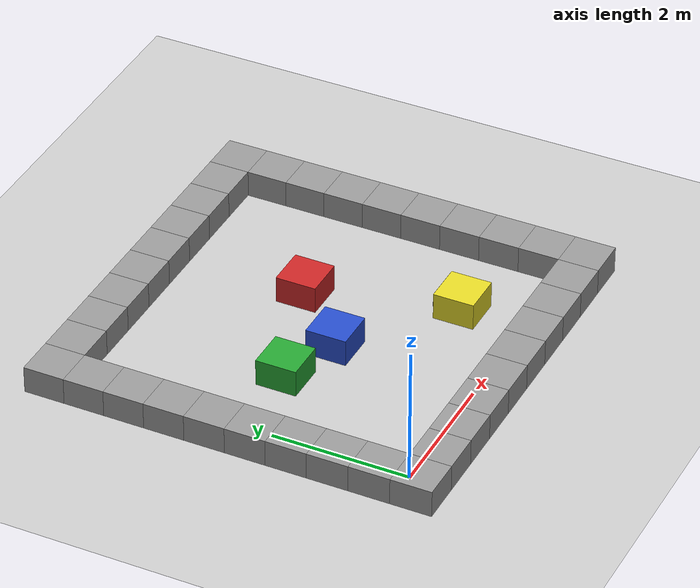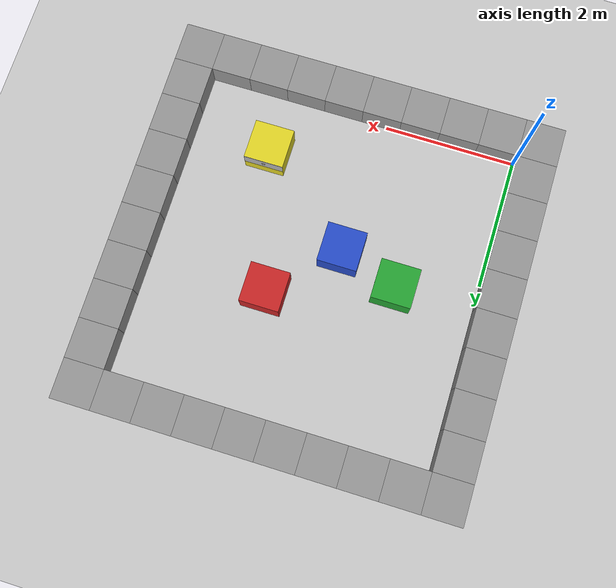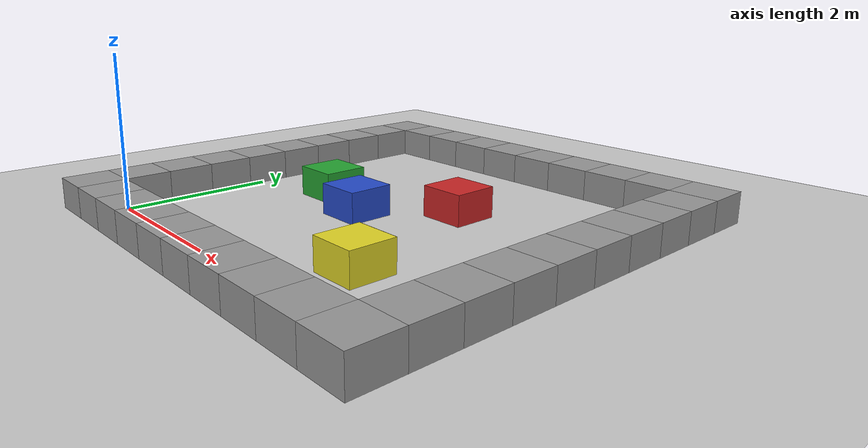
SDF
<sdf version="1.4">
 <world name="default">
  <scene><ambient>0.4 0.4 0.4 1</ambient><shadows>0</shadows></scene>
  <include>
   <uri>model://artag_background</uri>
   <pose>3.5999999999999996 1.2029999999999998 0.30000000000000004 -1.5707963267948966 0 3.141592653589793</pose>
  </include>
  <include>
   <uri>model://27</uri>
   <pose>3.5999999999999996 1.2029999999999998 0.275 0 0 1.5707963267948966</pose>
  </include>
  <include><uri>model://ground_plane</uri></include>
  <include><uri>model://sun</uri></include>
  <model name="818">
   <static>true</static>
   <pose>2.9999999999999996 2.9999999999999996 0.2 0 0 0</pose>
   <link name="link">
    <inertial><mass value="1"/><inertia ixx="1" ixy="1" ixz="1" iyy="1" iyz="1" izz="1"/></inertial>
    <collision name="collision"><geometry><box><size>0.6 0.6 0.4</size></box></geometry></collision>
    <visual name="visual">
     <geometry><box><size>0.6 0.6 0.4</size></box></geometry>
     <material>
      <script><name>Gazebo/Red</name><uri>file://media/materials/scripts/gazebo.material</uri></script>
     </material>
    </visual>
   </link>
  </model>
  <model name="820">
   <static>true</static>
   <pose>1.2 2.4 0.2 0 0 0</pose>
   <link name="link">
    <inertial><mass value="1"/><inertia ixx="1" ixy="1" ixz="1" iyy="1" iyz="1" izz="1"/></inertial>
    <collision name="collision"><geometry><box><size>0.6 0.6 0.4</size></box></geometry></collision>
    <visual name="visual">
     <geometry><box><size>0.6 0.6 0.4</size></box></geometry>
     <material>
      <script><name>Gazebo/Green</name><uri>file://media/materials/scripts/gazebo.material</uri></script>
     </material>
    </visual>
   </link>
  </model>
  <model name="822">
   <static>true</static>
   <pose>2.0999999999999996 2.0999999999999996 0.2 0 0 0</pose>
   <link name="link">
    <inertial><mass value="1"/><inertia ixx="1" ixy="1" ixz="1" iyy="1" iyz="1" izz="1"/></inertial>
    <collision name="collision"><geometry><box><size>0.6 0.6 0.4</size></box></geometry></collision>
    <visual name="visual">
     <geometry><box><size>0.6 0.6 0.4</size></box></geometry>
     <material>
      <script><name>Gazebo/Blue</name><uri>file://media/materials/scripts/gazebo.material</uri></script>
     </material>
    </visual>
   </link>
  </model>
  <model name="824">
   <static>true</static>
   <pose>3.5999999999999996 0.8999999999999999 0.2 0 0 0</pose>
   <link name="link">
    <inertial><mass value="1"/><inertia ixx="1" ixy="1" ixz="1" iyy="1" iyz="1" izz="1"/></inertial>
    <collision name="collision"><geometry><box><size>0.6 0.6 0.4</size></box></geometry></collision>
    <visual name="visual">
     <geometry><box><size>0.6 0.6 0.4</size></box></geometry>
     <material>
      <script><name>Gazebo/Yellow</name><uri>file://media/materials/scripts/gazebo.material</uri></script>
     </material>
    </visual>
   </link>
  </model>
  <model name="0_0">
   <static>true</static>
   <pose>-0.3 -0.3 0.2 0 0 0</pose>
   <link name="link">
    <inertial><mass value="1"/><inertia ixx="1" ixy="1" ixz="1" iyy="1" iyz="1" izz="1"/></inertial>
    <collision name="collision"><geometry><box><size>0.6 0.6 0.4</size></box></geometry></collision>
    <visual name="visual">
     <geometry><box><size>0.6 0.6 0.4</size></box></geometry>
     <material>
      <script><name>Gazebo/Grey</name><uri>file://media/materials/scripts/gazebo.material</uri></script>
     </material>
    </visual>
   </link>
  </model>
  <model name="1_1">
   <static>true</static>
   <pose>5.1 -0.3 0.2 0 0 0</pose>
   <link name="link">
    <inertial><mass value="1"/><inertia ixx="1" ixy="1" ixz="1" iyy="1" iyz="1" izz="1"/></inertial>
    <collision name="collision"><geometry><box><size>0.6 0.6 0.4</size></box></geometry></collision>
    <visual name="visual">
     <geometry><box><size>0.6 0.6 0.4</size></box></geometry>
     <material>
      <script><name>Gazebo/Grey</name><uri>file://media/materials/scripts/gazebo.material</uri></script>
     </material>
    </visual>
   </link>
  </model>
  <model name="0_2">
   <static>true</static>
   <pose>-0.3 -0.3 0.2 0 0 0</pose>
   <link name="link">
    <inertial><mass value="1"/><inertia ixx="1" ixy="1" ixz="1" iyy="1" iyz="1" izz="1"/></inertial>
    <collision name="collision"><geometry><box><size>0.6 0.6 0.4</size></box></geometry></collision>
    <visual name="visual">
     <geometry><box><size>0.6 0.6 0.4</size></box></geometry>
     <material>
      <script><name>Gazebo/Grey</name><uri>file://media/materials/scripts/gazebo.material</uri></script>
     </material>
    </visual>
   </link>
  </model>
  <model name="0_3">
   <static>true</static>
   <pose>-0.3 5.1 0.2 0 0 0</pose>
   <link name="link">
    <inertial><mass value="1"/><inertia ixx="1" ixy="1" ixz="1" iyy="1" iyz="1" izz="1"/></inertial>
    <collision name="collision"><geometry><box><size>0.6 0.6 0.4</size></box></geometry></collision>
    <visual name="visual">
     <geometry><box><size>0.6 0.6 0.4</size></box></geometry>
     <material>
      <script><name>Gazebo/Grey</name><uri>file://media/materials/scripts/gazebo.material</uri></script>
     </material>
    </visual>
   </link>
  </model>
  <model name="0_4">
   <static>true</static>
   <pose>-0.3 0.3 0.2 0 0 0</pose>
   <link name="link">
    <inertial><mass value="1"/><inertia ixx="1" ixy="1" ixz="1" iyy="1" iyz="1" izz="1"/></inertial>
    <collision name="collision"><geometry><box><size>0.6 0.6 0.4</size></box></geometry></collision>
    <visual name="visual">
     <geometry><box><size>0.6 0.6 0.4</size></box></geometry>
     <material>
      <script><name>Gazebo/Grey</name><uri>file://media/materials/scripts/gazebo.material</uri></script>
     </material>
    </visual>
   </link>
  </model>
  <model name="1_5">
   <static>true</static>
   <pose>5.1 0.3 0.2 0 0 0</pose>
   <link name="link">
    <inertial><mass value="1"/><inertia ixx="1" ixy="1" ixz="1" iyy="1" iyz="1" izz="1"/></inertial>
    <collision name="collision"><geometry><box><size>0.6 0.6 0.4</size></box></geometry></collision>
    <visual name="visual">
     <geometry><box><size>0.6 0.6 0.4</size></box></geometry>
     <material>
      <script><name>Gazebo/Grey</name><uri>file://media/materials/scripts/gazebo.material</uri></script>
     </material>
    </visual>
   </link>
  </model>
  <model name="0_6">
   <static>true</static>
   <pose>0.3 -0.3 0.2 0 0 0</pose>
   <link name="link">
    <inertial><mass value="1"/><inertia ixx="1" ixy="1" ixz="1" iyy="1" iyz="1" izz="1"/></inertial>
    <collision name="collision"><geometry><box><size>0.6 0.6 0.4</size></box></geometry></collision>
    <visual name="visual">
     <geometry><box><size>0.6 0.6 0.4</size></box></geometry>
     <material>
      <script><name>Gazebo/Grey</name><uri>file://media/materials/scripts/gazebo.material</uri></script>
     </material>
    </visual>
   </link>
  </model>
  <model name="0_7">
   <static>true</static>
   <pose>0.3 5.1 0.2 0 0 0</pose>
   <link name="link">
    <inertial><mass value="1"/><inertia ixx="1" ixy="1" ixz="1" iyy="1" iyz="1" izz="1"/></inertial>
    <collision name="collision"><geometry><box><size>0.6 0.6 0.4</size></box></geometry></collision>
    <visual name="visual">
     <geometry><box><size>0.6 0.6 0.4</size></box></geometry>
     <material>
      <script><name>Gazebo/Grey</name><uri>file://media/materials/scripts/gazebo.material</uri></script>
     </material>
    </visual>
   </link>
  </model>
  <model name="0_8">
   <static>true</static>
   <pose>-0.3 0.8999999999999999 0.2 0 0 0</pose>
   <link name="link">
    <inertial><mass value="1"/><inertia ixx="1" ixy="1" ixz="1" iyy="1" iyz="1" izz="1"/></inertial>
    <collision name="collision"><geometry><box><size>0.6 0.6 0.4</size></box></geometry></collision>
    <visual name="visual">
     <geometry><box><size>0.6 0.6 0.4</size></box></geometry>
     <material>
      <script><name>Gazebo/Grey</name><uri>file://media/materials/scripts/gazebo.material</uri></script>
     </material>
    </visual>
   </link>
  </model>
  <model name="1_9">
   <static>true</static>
   <pose>5.1 0.8999999999999999 0.2 0 0 0</pose>
   <link name="link">
    <inertial><mass value="1"/><inertia ixx="1" ixy="1" ixz="1" iyy="1" iyz="1" izz="1"/></inertial>
    <collision name="collision"><geometry><box><size>0.6 0.6 0.4</size></box></geometry></collision>
    <visual name="visual">
     <geometry><box><size>0.6 0.6 0.4</size></box></geometry>
     <material>
      <script><name>Gazebo/Grey</name><uri>file://media/materials/scripts/gazebo.material</uri></script>
     </material>
    </visual>
   </link>
  </model>
  <model name="0_10">
   <static>true</static>
   <pose>0.8999999999999999 -0.3 0.2 0 0 0</pose>
   <link name="link">
    <inertial><mass value="1"/><inertia ixx="1" ixy="1" ixz="1" iyy="1" iyz="1" izz="1"/></inertial>
    <collision name="collision"><geometry><box><size>0.6 0.6 0.4</size></box></geometry></collision>
    <visual name="visual">
     <geometry><box><size>0.6 0.6 0.4</size></box></geometry>
     <material>
      <script><name>Gazebo/Grey</name><uri>file://media/materials/scripts/gazebo.material</uri></script>
     </material>
    </visual>
   </link>
  </model>
  <model name="0_11">
   <static>true</static>
   <pose>0.8999999999999999 5.1 0.2 0 0 0</pose>
   <link name="link">
    <inertial><mass value="1"/><inertia ixx="1" ixy="1" ixz="1" iyy="1" iyz="1" izz="1"/></inertial>
    <collision name="collision"><geometry><box><size>0.6 0.6 0.4</size></box></geometry></collision>
    <visual name="visual">
     <geometry><box><size>0.6 0.6 0.4</size></box></geometry>
     <material>
      <script><name>Gazebo/Grey</name><uri>file://media/materials/scripts/gazebo.material</uri></script>
     </material>
    </visual>
   </link>
  </model>
  <model name="0_12">
   <static>true</static>
   <pose>-0.3 1.5 0.2 0 0 0</pose>
   <link name="link">
    <inertial><mass value="1"/><inertia ixx="1" ixy="1" ixz="1" iyy="1" iyz="1" izz="1"/></inertial>
    <collision name="collision"><geometry><box><size>0.6 0.6 0.4</size></box></geometry></collision>
    <visual name="visual">
     <geometry><box><size>0.6 0.6 0.4</size></box></geometry>
     <material>
      <script><name>Gazebo/Grey</name><uri>file://media/materials/scripts/gazebo.material</uri></script>
     </material>
    </visual>
   </link>
  </model>
  <model name="1_13">
   <static>true</static>
   <pose>5.1 1.5 0.2 0 0 0</pose>
   <link name="link">
    <inertial><mass value="1"/><inertia ixx="1" ixy="1" ixz="1" iyy="1" iyz="1" izz="1"/></inertial>
    <collision name="collision"><geometry><box><size>0.6 0.6 0.4</size></box></geometry></collision>
    <visual name="visual">
     <geometry><box><size>0.6 0.6 0.4</size></box></geometry>
     <material>
      <script><name>Gazebo/Grey</name><uri>file://media/materials/scripts/gazebo.material</uri></script>
     </material>
    </visual>
   </link>
  </model>
  <model name="0_14">
   <static>true</static>
   <pose>1.5 -0.3 0.2 0 0 0</pose>
   <link name="link">
    <inertial><mass value="1"/><inertia ixx="1" ixy="1" ixz="1" iyy="1" iyz="1" izz="1"/></inertial>
    <collision name="collision"><geometry><box><size>0.6 0.6 0.4</size></box></geometry></collision>
    <visual name="visual">
     <geometry><box><size>0.6 0.6 0.4</size></box></geometry>
     <material>
      <script><name>Gazebo/Grey</name><uri>file://media/materials/scripts/gazebo.material</uri></script>
     </material>
    </visual>
   </link>
  </model>
  <model name="0_15">
   <static>true</static>
   <pose>1.5 5.1 0.2 0 0 0</pose>
   <link name="link">
    <inertial><mass value="1"/><inertia ixx="1" ixy="1" ixz="1" iyy="1" iyz="1" izz="1"/></inertial>
    <collision name="collision"><geometry><box><size>0.6 0.6 0.4</size></box></geometry></collision>
    <visual name="visual">
     <geometry><box><size>0.6 0.6 0.4</size></box></geometry>
     <material>
      <script><name>Gazebo/Grey</name><uri>file://media/materials/scripts/gazebo.material</uri></script>
     </material>
    </visual>
   </link>
  </model>
  <model name="0_16">
   <static>true</static>
   <pose>-0.3 2.0999999999999996 0.2 0 0 0</pose>
   <link name="link">
    <inertial><mass value="1"/><inertia ixx="1" ixy="1" ixz="1" iyy="1" iyz="1" izz="1"/></inertial>
    <collision name="collision"><geometry><box><size>0.6 0.6 0.4</size></box></geometry></collision>
    <visual name="visual">
     <geometry><box><size>0.6 0.6 0.4</size></box></geometry>
     <material>
      <script><name>Gazebo/Grey</name><uri>file://media/materials/scripts/gazebo.material</uri></script>
     </material>
    </visual>
   </link>
  </model>
  <model name="1_17">
   <static>true</static>
   <pose>5.1 2.0999999999999996 0.2 0 0 0</pose>
   <link name="link">
    <inertial><mass value="1"/><inertia ixx="1" ixy="1" ixz="1" iyy="1" iyz="1" izz="1"/></inertial>
    <collision name="collision"><geometry><box><size>0.6 0.6 0.4</size></box></geometry></collision>
    <visual name="visual">
     <geometry><box><size>0.6 0.6 0.4</size></box></geometry>
     <material>
      <script><name>Gazebo/Grey</name><uri>file://media/materials/scripts/gazebo.material</uri></script>
     </material>
    </visual>
   </link>
  </model>
  <model name="0_18">
   <static>true</static>
   <pose>2.0999999999999996 -0.3 0.2 0 0 0</pose>
   <link name="link">
    <inertial><mass value="1"/><inertia ixx="1" ixy="1" ixz="1" iyy="1" iyz="1" izz="1"/></inertial>
    <collision name="collision"><geometry><box><size>0.6 0.6 0.4</size></box></geometry></collision>
    <visual name="visual">
     <geometry><box><size>0.6 0.6 0.4</size></box></geometry>
     <material>
      <script><name>Gazebo/Grey</name><uri>file://media/materials/scripts/gazebo.material</uri></script>
     </material>
    </visual>
   </link>
  </model>
  <model name="0_19">
   <static>true</static>
   <pose>2.0999999999999996 5.1 0.2 0 0 0</pose>
   <link name="link">
    <inertial><mass value="1"/><inertia ixx="1" ixy="1" ixz="1" iyy="1" iyz="1" izz="1"/></inertial>
    <collision name="collision"><geometry><box><size>0.6 0.6 0.4</size></box></geometry></collision>
    <visual name="visual">
     <geometry><box><size>0.6 0.6 0.4</size></box></geometry>
     <material>
      <script><name>Gazebo/Grey</name><uri>file://media/materials/scripts/gazebo.material</uri></script>
     </material>
    </visual>
   </link>
  </model>
  <model name="0_20">
   <static>true</static>
   <pose>-0.3 2.6999999999999997 0.2 0 0 0</pose>
   <link name="link">
    <inertial><mass value="1"/><inertia ixx="1" ixy="1" ixz="1" iyy="1" iyz="1" izz="1"/></inertial>
    <collision name="collision"><geometry><box><size>0.6 0.6 0.4</size></box></geometry></collision>
    <visual name="visual">
     <geometry><box><size>0.6 0.6 0.4</size></box></geometry>
     <material>
      <script><name>Gazebo/Grey</name><uri>file://media/materials/scripts/gazebo.material</uri></script>
     </material>
    </visual>
   </link>
  </model>
  <model name="1_21">
   <static>true</static>
   <pose>5.1 2.6999999999999997 0.2 0 0 0</pose>
   <link name="link">
    <inertial><mass value="1"/><inertia ixx="1" ixy="1" ixz="1" iyy="1" iyz="1" izz="1"/></inertial>
    <collision name="collision"><geometry><box><size>0.6 0.6 0.4</size></box></geometry></collision>
    <visual name="visual">
     <geometry><box><size>0.6 0.6 0.4</size></box></geometry>
     <material>
      <script><name>Gazebo/Grey</name><uri>file://media/materials/scripts/gazebo.material</uri></script>
     </material>
    </visual>
   </link>
  </model>
  <model name="0_22">
   <static>true</static>
   <pose>2.6999999999999997 -0.3 0.2 0 0 0</pose>
   <link name="link">
    <inertial><mass value="1"/><inertia ixx="1" ixy="1" ixz="1" iyy="1" iyz="1" izz="1"/></inertial>
    <collision name="collision"><geometry><box><size>0.6 0.6 0.4</size></box></geometry></collision>
    <visual name="visual">
     <geometry><box><size>0.6 0.6 0.4</size></box></geometry>
     <material>
      <script><name>Gazebo/Grey</name><uri>file://media/materials/scripts/gazebo.material</uri></script>
     </material>
    </visual>
   </link>
  </model>
  <model name="0_23">
   <static>true</static>
   <pose>2.6999999999999997 5.1 0.2 0 0 0</pose>
   <link name="link">
    <inertial><mass value="1"/><inertia ixx="1" ixy="1" ixz="1" iyy="1" iyz="1" izz="1"/></inertial>
    <collision name="collision"><geometry><box><size>0.6 0.6 0.4</size></box></geometry></collision>
    <visual name="visual">
     <geometry><box><size>0.6 0.6 0.4</size></box></geometry>
     <material>
      <script><name>Gazebo/Grey</name><uri>file://media/materials/scripts/gazebo.material</uri></script>
     </material>
    </visual>
   </link>
  </model>
  <model name="0_24">
   <static>true</static>
   <pose>-0.3 3.3 0.2 0 0 0</pose>
   <link name="link">
    <inertial><mass value="1"/><inertia ixx="1" ixy="1" ixz="1" iyy="1" iyz="1" izz="1"/></inertial>
    <collision name="collision"><geometry><box><size>0.6 0.6 0.4</size></box></geometry></collision>
    <visual name="visual">
     <geometry><box><size>0.6 0.6 0.4</size></box></geometry>
     <material>
      <script><name>Gazebo/Grey</name><uri>file://media/materials/scripts/gazebo.material</uri></script>
     </material>
    </visual>
   </link>
  </model>
  <model name="1_25">
   <static>true</static>
   <pose>5.1 3.3 0.2 0 0 0</pose>
   <link name="link">
    <inertial><mass value="1"/><inertia ixx="1" ixy="1" ixz="1" iyy="1" iyz="1" izz="1"/></inertial>
    <collision name="collision"><geometry><box><size>0.6 0.6 0.4</size></box></geometry></collision>
    <visual name="visual">
     <geometry><box><size>0.6 0.6 0.4</size></box></geometry>
     <material>
      <script><name>Gazebo/Grey</name><uri>file://media/materials/scripts/gazebo.material</uri></script>
     </material>
    </visual>
   </link>
  </model>
  <model name="0_26">
   <static>true</static>
   <pose>3.3 -0.3 0.2 0 0 0</pose>
   <link name="link">
    <inertial><mass value="1"/><inertia ixx="1" ixy="1" ixz="1" iyy="1" iyz="1" izz="1"/></inertial>
    <collision name="collision"><geometry><box><size>0.6 0.6 0.4</size></box></geometry></collision>
    <visual name="visual">
     <geometry><box><size>0.6 0.6 0.4</size></box></geometry>
     <material>
      <script><name>Gazebo/Grey</name><uri>file://media/materials/scripts/gazebo.material</uri></script>
     </material>
    </visual>
   </link>
  </model>
  <model name="0_27">
   <static>true</static>
   <pose>3.3 5.1 0.2 0 0 0</pose>
   <link name="link">
    <inertial><mass value="1"/><inertia ixx="1" ixy="1" ixz="1" iyy="1" iyz="1" izz="1"/></inertial>
    <collision name="collision"><geometry><box><size>0.6 0.6 0.4</size></box></geometry></collision>
    <visual name="visual">
     <geometry><box><size>0.6 0.6 0.4</size></box></geometry>
     <material>
      <script><name>Gazebo/Grey</name><uri>file://media/materials/scripts/gazebo.material</uri></script>
     </material>
    </visual>
   </link>
  </model>
  <model name="0_28">
   <static>true</static>
   <pose>-0.3 3.8999999999999995 0.2 0 0 0</pose>
   <link name="link">
    <inertial><mass value="1"/><inertia ixx="1" ixy="1" ixz="1" iyy="1" iyz="1" izz="1"/></inertial>
    <collision name="collision"><geometry><box><size>0.6 0.6 0.4</size></box></geometry></collision>
    <visual name="visual">
     <geometry><box><size>0.6 0.6 0.4</size></box></geometry>
     <material>
      <script><name>Gazebo/Grey</name><uri>file://media/materials/scripts/gazebo.material</uri></script>
     </material>
    </visual>
   </link>
  </model>
  <model name="1_29">
   <static>true</static>
   <pose>5.1 3.8999999999999995 0.2 0 0 0</pose>
   <link name="link">
    <inertial><mass value="1"/><inertia ixx="1" ixy="1" ixz="1" iyy="1" iyz="1" izz="1"/></inertial>
    <collision name="collision"><geometry><box><size>0.6 0.6 0.4</size></box></geometry></collision>
    <visual name="visual">
     <geometry><box><size>0.6 0.6 0.4</size></box></geometry>
     <material>
      <script><name>Gazebo/Grey</name><uri>file://media/materials/scripts/gazebo.material</uri></script>
     </material>
    </visual>
   </link>
  </model>
  <model name="0_30">
   <static>true</static>
   <pose>3.8999999999999995 -0.3 0.2 0 0 0</pose>
   <link name="link">
    <inertial><mass value="1"/><inertia ixx="1" ixy="1" ixz="1" iyy="1" iyz="1" izz="1"/></inertial>
    <collision name="collision"><geometry><box><size>0.6 0.6 0.4</size></box></geometry></collision>
    <visual name="visual">
     <geometry><box><size>0.6 0.6 0.4</size></box></geometry>
     <material>
      <script><name>Gazebo/Grey</name><uri>file://media/materials/scripts/gazebo.material</uri></script>
     </material>
    </visual>
   </link>
  </model>
  <model name="0_31">
   <static>true</static>
   <pose>3.8999999999999995 5.1 0.2 0 0 0</pose>
   <link name="link">
    <inertial><mass value="1"/><inertia ixx="1" ixy="1" ixz="1" iyy="1" iyz="1" izz="1"/></inertial>
    <collision name="collision"><geometry><box><size>0.6 0.6 0.4</size></box></geometry></collision>
    <visual name="visual">
     <geometry><box><size>0.6 0.6 0.4</size></box></geometry>
     <material>
      <script><name>Gazebo/Grey</name><uri>file://media/materials/scripts/gazebo.material</uri></script>
     </material>
    </visual>
   </link>
  </model>
  <model name="0_32">
   <static>true</static>
   <pose>-0.3 4.5 0.2 0 0 0</pose>
   <link name="link">
    <inertial><mass value="1"/><inertia ixx="1" ixy="1" ixz="1" iyy="1" iyz="1" izz="1"/></inertial>
    <collision name="collision"><geometry><box><size>0.6 0.6 0.4</size></box></geometry></collision>
    <visual name="visual">
     <geometry><box><size>0.6 0.6 0.4</size></box></geometry>
     <material>
      <script><name>Gazebo/Grey</name><uri>file://media/materials/scripts/gazebo.material</uri></script>
     </material>
    </visual>
   </link>
  </model>
  <model name="1_33">
   <static>true</static>
   <pose>5.1 4.5 0.2 0 0 0</pose>
   <link name="link">
    <inertial><mass value="1"/><inertia ixx="1" ixy="1" ixz="1" iyy="1" iyz="1" izz="1"/></inertial>
    <collision name="collision"><geometry><box><size>0.6 0.6 0.4</size></box></geometry></collision>
    <visual name="visual">
     <geometry><box><size>0.6 0.6 0.4</size></box></geometry>
     <material>
      <script><name>Gazebo/Grey</name><uri>file://media/materials/scripts/gazebo.material</uri></script>
     </material>
    </visual>
   </link>
  </model>
  <model name="0_34">
   <static>true</static>
   <pose>4.5 -0.3 0.2 0 0 0</pose>
   <link name="link">
    <inertial><mass value="1"/><inertia ixx="1" ixy="1" ixz="1" iyy="1" iyz="1" izz="1"/></inertial>
    <collision name="collision"><geometry><box><size>0.6 0.6 0.4</size></box></geometry></collision>
    <visual name="visual">
     <geometry><box><size>0.6 0.6 0.4</size></box></geometry>
     <material>
      <script><name>Gazebo/Grey</name><uri>file://media/materials/scripts/gazebo.material</uri></script>
     </material>
    </visual>
   </link>
  </model>
  <model name="0_35">
   <static>true</static>
   <pose>4.5 5.1 0.2 0 0 0</pose>
   <link name="link">
    <inertial><mass value="1"/><inertia ixx="1" ixy="1" ixz="1" iyy="1" iyz="1" izz="1"/></inertial>
    <collision name="collision"><geometry><box><size>0.6 0.6 0.4</size></box></geometry></collision>
    <visual name="visual">
     <geometry><box><size>0.6 0.6 0.4</size></box></geometry>
     <material>
      <script><name>Gazebo/Grey</name><uri>file://media/materials/scripts/gazebo.material</uri></script>
     </material>
    </visual>
   </link>
  </model>
  <model name="0_36">
   <static>true</static>
   <pose>-0.3 5.1 0.2 0 0 0</pose>
   <link name="link">
    <inertial><mass value="1"/><inertia ixx="1" ixy="1" ixz="1" iyy="1" iyz="1" izz="1"/></inertial>
    <collision name="collision"><geometry><box><size>0.6 0.6 0.4</size></box></geometry></collision>
    <visual name="visual">
     <geometry><box><size>0.6 0.6 0.4</size></box></geometry>
     <material>
      <script><name>Gazebo/Grey</name><uri>file://media/materials/scripts/gazebo.material</uri></script>
     </material>
    </visual>
   </link>
  </model>
  <model name="1_37">
   <static>true</static>
   <pose>5.1 5.1 0.2 0 0 0</pose>
   <link name="link">
    <inertial><mass value="1"/><inertia ixx="1" ixy="1" ixz="1" iyy="1" iyz="1" izz="1"/></inertial>
    <collision name="collision"><geometry><box><size>0.6 0.6 0.4</size></box></geometry></collision>
    <visual name="visual">
     <geometry><box><size>0.6 0.6 0.4</size></box></geometry>
     <material>
      <script><name>Gazebo/Grey</name><uri>file://media/materials/scripts/gazebo.material</uri></script>
     </material>
    </visual>
   </link>
  </model>
  <model name="0_38">
   <static>true</static>
   <pose>5.1 -0.3 0.2 0 0 0</pose>
   <link name="link">
    <inertial><mass value="1"/><inertia ixx="1" ixy="1" ixz="1" iyy="1" iyz="1" izz="1"/></inertial>
    <collision name="collision"><geometry><box><size>0.6 0.6 0.4</size></box></geometry></collision>
    <visual name="visual">
     <geometry><box><size>0.6 0.6 0.4</size></box></geometry>
     <material>
      <script><name>Gazebo/Grey</name><uri>file://media/materials/scripts/gazebo.material</uri></script>
     </material>
    </visual>
   </link>
  </model>
  <model name="0_39">
   <static>true</static>
   <pose>5.1 5.1 0.2 0 0 0</pose>
   <link name="link">
    <inertial><mass value="1"/><inertia ixx="1" ixy="1" ixz="1" iyy="1" iyz="1" izz="1"/></inertial>
    <collision name="collision"><geometry><box><size>0.6 0.6 0.4</size></box></geometry></collision>
    <visual name="visual">
     <geometry><box><size>0.6 0.6 0.4</size></box></geometry>
     <material>
      <script><name>Gazebo/Grey</name><uri>file://media/materials/scripts/gazebo.material</uri></script>
     </material>
    </visual>
   </link>
  </model>
 </world>
</sdf>

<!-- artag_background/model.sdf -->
<sdf version="1.6">
  <model name="artag_background">
    <static>true</static>
    <link name="link">
      <visual name="visual">
        <geometry>
          <mesh>
            <uri>model://artag_background/meshes/background.dae</uri>
          </mesh>
        </geometry>
      </visual>
    </link>
  </model>
</sdf>

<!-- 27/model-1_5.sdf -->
<sdf version="1.5">
  <model name="27">
    <static>true</static>
    <link name="link">
      <visual name="visual">
        <geometry>
          <mesh>
            <uri>model://27/meshes/27.dae</uri>
          <scale>0.1 0.1 0.1</scale></mesh>
        </geometry>
      </visual>
    </link>
  </model>
</sdf>
